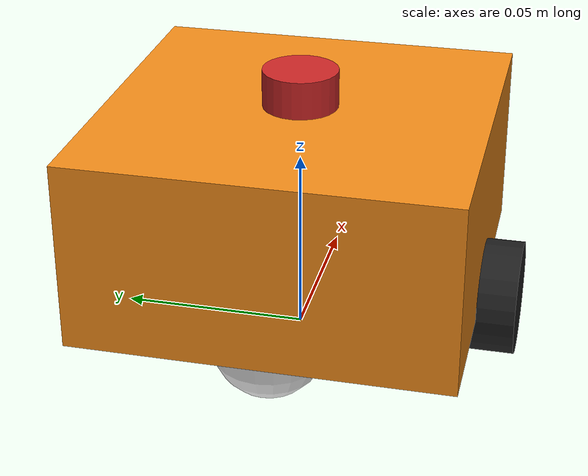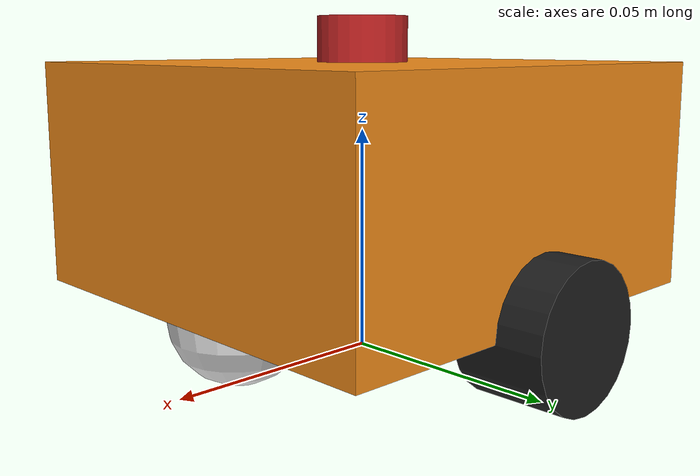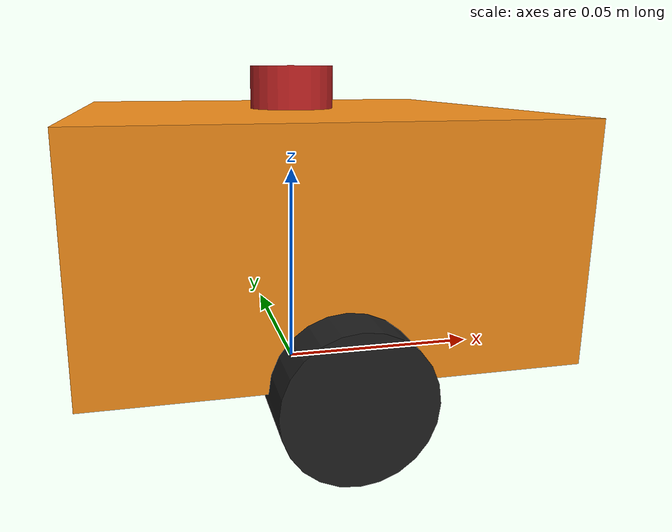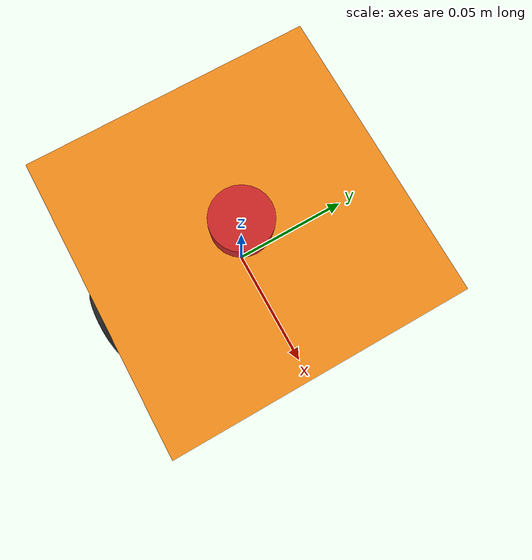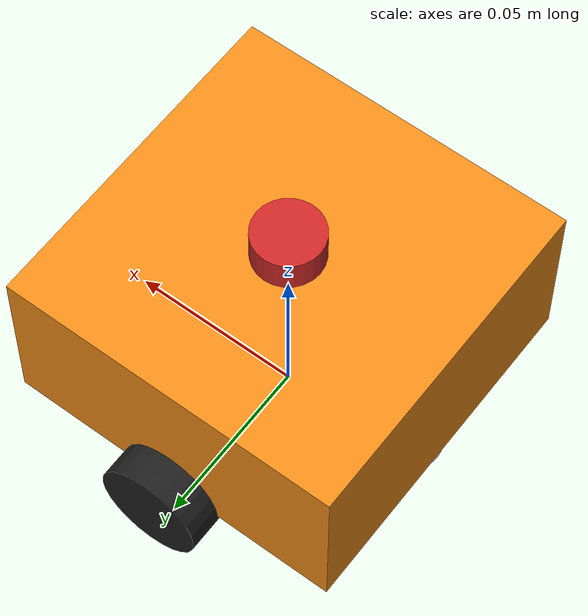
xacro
<?xml version="1.0"?>
<robot xmlns:xacro="http://www.ros.org/wiki/xacro" name="diff_robot">

  <xacro:include filename="$(find demo_diff_robot)/urdf/material_common.xacro"/>
  <xacro:include filename="$(find demo_diff_robot)/urdf/inertial_common.xacro"/>
  <xacro:include filename="$(find demo_diff_robot)/urdf/diff_robot_ros2_control.xacro"/>

  <xacro:macro name="diff_robot" params="prefix">

    <xacro:property name="PI" value="3.1415926535897931"/>
    <xacro:property name="base_mass" value="0.3"/>
    <xacro:property name="base_length" value="0.1"/>
    <xacro:property name="base_width" value="0.1"/>
    <xacro:property name="base_height" value="0.05"/>
    <xacro:property name="lidar_mass" value="0.03"/>
    <xacro:property name="lidar_length" value="0.01"/>
    <xacro:property name="lidar_radius" value="0.01"/>
    <xacro:property name="wheel_mass" value="0.3"/>
    <xacro:property name="wheel_length" value="0.020"/>
    <xacro:property name="wheel_radius" value="0.015"/>
    <xacro:property name="caster_wheel_mass" value="0.1"/>
    <xacro:property name="caster_wheel_radius" value="0.015"/>

    <!-- base footprint link -->
    <link name="${prefix}base_footprint">
    </link>

    <!-- base footprint joint -->
    <joint name="${prefix}base_footprint_joint" type="fixed">
      <parent link="${prefix}base_footprint"/>
      <child link="${prefix}base_link"/>
      <origin xyz="0 0 ${base_height/2+wheel_radius}" rpy="0 0 0"/>
    </joint>

    <!-- base link -->
    <link name="${prefix}base_link">
      <visual>
        <origin xyz="0 0 0" rpy="0 0 0"/>
        <geometry>
          <box size="${base_length} ${base_width} ${base_height}"/>
        </geometry>
        <material name="orange"/>
      </visual>

      <collision>
        <origin xyz="0 0 0" rpy="0 0 0"/>
        <geometry>
          <box size="${base_length} ${base_width} ${base_height}"/>
        </geometry>
      </collision>

      <xacro:box_inertia m="${base_mass}" l="${base_length}" w="${base_width}" h="${base_height}"/>
    </link>

    <gazebo reference="${prefix}base_link">
      <material>Gazebo/Orange</material>
    </gazebo>

    <!-- imu link -->
    <link name="${prefix}imu_link">
      <visual>
        <origin xyz="0 0 0" rpy="0 0 0"/>
        <geometry>
          <box size="0.01 0.01 0.01"/>
        </geometry>
        <material name="red"/>
      </visual>

      <collision>
        <origin xyz="0 0 0" rpy="0 0 0"/>
        <geometry>
          <box size="0.01 0.01 0.01"/>
        </geometry>
      </collision>

      <xacro:box_inertia m="0.01" l="0.01" w="0.01" h="0.01"/>
    </link>

    <gazebo reference="${prefix}imu_link">
      <material>Gazebo/Red</material>
      <sensor name="imu_sensor" type="imu">
        <plugin name="imu_sensor" filename="libgazebo_ros_imu_sensor.so">
          <ros>
            <namespace>/</namespace>
            <remapping>~/out:=/imu</remapping>
          </ros>
          <initial_orientation_as_reference>false</initial_orientation_as_reference>
        </plugin>
        <always_on>true</always_on>
        <update_rate>100</update_rate>
        <imu>
          <angular_velocity>
            <x>
              <noise type="gaussian">
                <mean>0.0</mean>
                <stddev>2e-4</stddev>
                <bias_mean>0.0000075</bias_mean>
                <bias_stddev>0.0000008</bias_stddev>
              </noise>
            </x>
            <y>
              <noise type="gaussian">
                <mean>0.0</mean>
                <stddev>2e-4</stddev>
                <bias_mean>0.0000075</bias_mean>
                <bias_stddev>0.0000008</bias_stddev>
              </noise>
            </y>
            <z>
              <noise type="gaussian">
                <mean>0.0</mean>
                <stddev>2e-4</stddev>
                <bias_mean>0.0000075</bias_mean>
                <bias_stddev>0.0000008</bias_stddev>
              </noise>
            </z>
          </angular_velocity>
          <linear_acceleration>
            <x>
              <noise type="gaussian">
                <mean>0.0</mean>
                <stddev>1.7e-2</stddev>
                <bias_mean>0.1</bias_mean>
                <bias_stddev>0.001</bias_stddev>
              </noise>
            </x>
            <y>
              <noise type="gaussian">
                <mean>0.0</mean>
                <stddev>1.7e-2</stddev>
                <bias_mean>0.1</bias_mean>
                <bias_stddev>0.001</bias_stddev>
              </noise>
            </y>
            <z>
              <noise type="gaussian">
                <mean>0.0</mean>
                <stddev>1.7e-2</stddev>
                <bias_mean>0.1</bias_mean>
                <bias_stddev>0.001</bias_stddev>
              </noise>
            </z>
          </linear_acceleration>
        </imu>
      </sensor>
    </gazebo>

    <!-- imu joint -->
    <joint name="${prefix}imu_joint" type="fixed">
      <parent link="${prefix}base_link"/>
      <child link="${prefix}imu_link"/>
      <origin xyz="0 0 0" rpy="0 0 0"/>
    </joint>

    <!-- lidar link -->
    <link name="${prefix}lidar_link">
      <visual>
        <origin xyz="0 0 0" rpy="0 0 0"/>
        <geometry>
          <cylinder length="${lidar_length}" radius="${lidar_radius}"/>
        </geometry>
        <material name="red"/>
      </visual>

      <collision>
        <origin xyz="0 0 0" rpy="0 0 0"/>
        <geometry>
          <cylinder length="${lidar_length}" radius="${lidar_radius}"/>
        </geometry>
      </collision>

      <xacro:cylinder_inertia m="${lidar_mass}" l="${lidar_length}" r="${lidar_radius}"/>
    </link>

    <gazebo reference="${prefix}lidar_link">
      <material>Gazebo/Red</material>
      <sensor name="lidar_sensor" type="ray">
        <plugin name="lidar_sensor" filename="libgazebo_ros_ray_sensor.so">
          <ros>
            <namespace>/</namespace>
            <remapping>~/out:=/scan</remapping>
          </ros>
          <output_type>sensor_msgs/LaserScan</output_type>
          <frame_name>lidar_link</frame_name>
        </plugin>
        <always_on>true</always_on>
        <visualize>true</visualize>
        <update_rate>10</update_rate>
        <pose>0 0 0 0 0 0</pose>
        <ray>
          <scan>
            <horizontal>
              <samples>360</samples>
              <resolution>1</resolution>
              <min_angle>-${PI}</min_angle>
              <max_angle>${PI}</max_angle>
            </horizontal>
          </scan>
          <range>
            <min>0.03</min>
            <max>5</max>
            <resolution>0.003</resolution>
          </range>
          <noise>
            <type>gaussian</type>
            <mean>0.0</mean>
            <stddev>0.01</stddev>
          </noise>
        </ray>
      </sensor>
    </gazebo>

    <!-- lidar joint -->
    <joint name="${prefix}lidar_joint" type="fixed">
      <parent link="${prefix}base_link"/>
      <child link="${prefix}lidar_link"/>
      <origin xyz="0 0 ${base_height/2 + lidar_length/2}" rpy="0 0 0"/>
    </joint>

    <!-- left wheel link -->
    <link name="${prefix}left_wheel_link">
      <visual>
        <origin xyz="0 0 0" rpy="${PI/2} 0 0"/>
        <geometry>
          <cylinder length="${wheel_length}" radius="${wheel_radius}"/>
        </geometry>
        <material name="black"/>
      </visual>

      <collision>
        <origin xyz="0 0 0" rpy="${PI/2} 0 0"/>
        <geometry>
          <cylinder length="${wheel_length}" radius="${wheel_radius}"/>
        </geometry>
      </collision>

      <xacro:cylinder_inertia m="${wheel_mass}" l="${wheel_length}" r="${wheel_radius}"/>
    </link>

    <gazebo reference="${prefix}left_wheel_link">
      <material>Gazebo/Black</material>
      <mu1 value="20.0"/>
      <mu2 value="20.0"/>
      <kp value="1000000000.0"/>
      <kd value="1.0"/>
    </gazebo>

    <!-- left wheel joint -->
    <joint name="${prefix}left_wheel_joint" type="continuous">
      <parent link="${prefix}base_link"/>
      <child link="${prefix}left_wheel_link"/>
      <origin xyz="0 ${base_width/2} -${base_height/2}" rpy="0 0 0"/>
      <axis xyz="0 1 0"/>
    </joint>

    <!-- right wheel link -->
    <link name="${prefix}right_wheel_link">
      <visual>
        <origin xyz="0 0 0" rpy="${PI/2} 0 0"/>
        <geometry>
          <cylinder length="${wheel_length}" radius="${wheel_radius}"/>
        </geometry>
        <material name="black"/>
      </visual>

      <collision>
        <origin xyz="0 0 0" rpy="${PI/2} 0 0"/>
        <geometry>
          <cylinder length="${wheel_length}" radius="${wheel_radius}"/>
        </geometry>
      </collision>

      <xacro:cylinder_inertia m="${wheel_mass}" l="${wheel_length}" r="${wheel_radius}"/>
    </link>

    <gazebo reference="${prefix}right_wheel_link">
      <material>Gazebo/Black</material>
      <mu1 value="20.0"/>
      <mu2 value="20.0"/>
      <kp value="1000000000.0"/>
      <kd value="1.0"/>
    </gazebo>

    <!-- right wheel joint -->
    <joint name="${prefix}right_wheel_joint" type="continuous">
      <parent link="${prefix}base_link"/>
      <child link="${prefix}right_wheel_link"/>
      <origin xyz="0 -${base_width/2} -${base_height/2}" rpy="0 0 0"/>
      <axis xyz="0 1 0"/>
    </joint>

    <!-- front caster wheel link -->
    <link name="${prefix}front_caster_wheel_link">
      <visual>
        <origin xyz="0 0 0" rpy="0 0 0"/>
        <geometry>
          <sphere radius="${caster_wheel_radius}"/>
        </geometry>
        <material name="white"/>
      </visual>

      <collision>
        <origin xyz="0 0 0" rpy="0 0 0"/>
        <geometry>
          <sphere radius="${caster_wheel_radius}"/>
        </geometry>
      </collision>

      <xacro:sphere_inertia m="${caster_wheel_mass}" r="${caster_wheel_radius}"/>
    </link>

    <gazebo reference="${prefix}front_caster_wheel_link">
      <mu1 value="0.0"/>
      <mu2 value="0.0"/>
      <kp value="1000000000.0"/>
      <kd value="1.0"/>
    </gazebo>

    <!-- front caster wheel joint -->
    <joint name="${prefix}front_caster_wheel_joint" type="fixed">
      <parent link="${prefix}base_link"/>
      <child link="${prefix}front_caster_wheel_link"/>
      <origin xyz="${base_length/2 - caster_wheel_radius} 0 -${base_height/2}" rpy="0 0 0"/>
    </joint>

    <!-- back caster wheel link -->
    <link name="${prefix}back_caster_wheel_link">
      <visual>
        <origin xyz="0 0 0" rpy="0 0 0"/>
        <geometry>
          <sphere radius="${caster_wheel_radius}"/>
        </geometry>
        <material name="white"/>
      </visual>

      <collision>
        <origin xyz="0 0 0" rpy="0 0 0"/>
        <geometry>
          <sphere radius="${caster_wheel_radius}"/>
        </geometry>
      </collision>

      <xacro:sphere_inertia m="${caster_wheel_mass}" r="${caster_wheel_radius}"/>
    </link>

    <gazebo reference="${prefix}back_caster_wheel_link">
      <mu1 value="0.0"/>
      <mu2 value="0.0"/>
      <kp value="1000000000.0"/>
      <kd value="1.0"/>
    </gazebo>

    <!-- back caster wheel joint -->
    <joint name="${prefix}back_caster_wheel_joint" type="fixed">
      <parent link="${prefix}base_link"/>
      <child link="${prefix}back_caster_wheel_link"/>
      <origin xyz="${-base_length/2 + caster_wheel_radius} 0 -${base_height/2}" rpy="0 0 0"/>
    </joint>

  </xacro:macro>

  <xacro:diff_robot prefix=""/>
  <xacro:diff_robot_ros2_control/>

</robot>

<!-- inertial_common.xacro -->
<robot xmlns:xacro="http://ros.org/wiki/xacro">

  <xacro:macro name="box_inertia" params="m l w h">
    <inertial>
      <mass value="${m}"/>
      <inertia ixx="${(m/12) * (l*l + h*h)}"
               ixy="0.0"
               ixz="0.0"
               iyy="${(m/12) * (w*w + h*h)}"
               iyz="0.0"
               izz="${(m/12) * (l*l + w*w)}"/>
    </inertial>
  </xacro:macro>

  <xacro:macro name="cylinder_inertia" params="m l r">
    <inertial>
      <mass value="${m}"/>
      <inertia ixx="${(m/12) * (3*r*r + l*l)}"
               ixy="0.0"
               ixz="0.0"
               iyy="${(m/12) * (3*r*r + l*l)}"
               iyz="0.0"
               izz="${(m/2) * (r*r)}"/>
    </inertial>
  </xacro:macro>

  <xacro:macro name="sphere_inertia" params="m r">
    <inertial>
      <mass value="${m}"/>
      <inertia ixx="${(2/5) * m * (r*r)}"
               ixy="0.0"
               ixz="0.0"
               iyy="${(2/5) * m * (r*r)}"
               iyz="0.0"
               izz="${(2/5) * m * (r*r)}"/>
    </inertial>
  </xacro:macro>

</robot>
